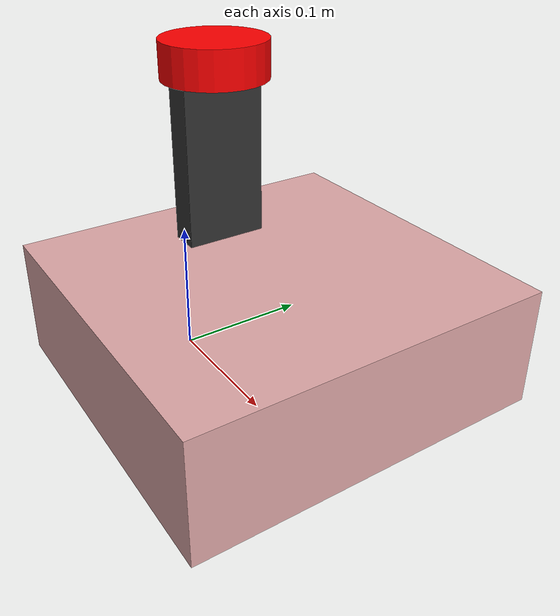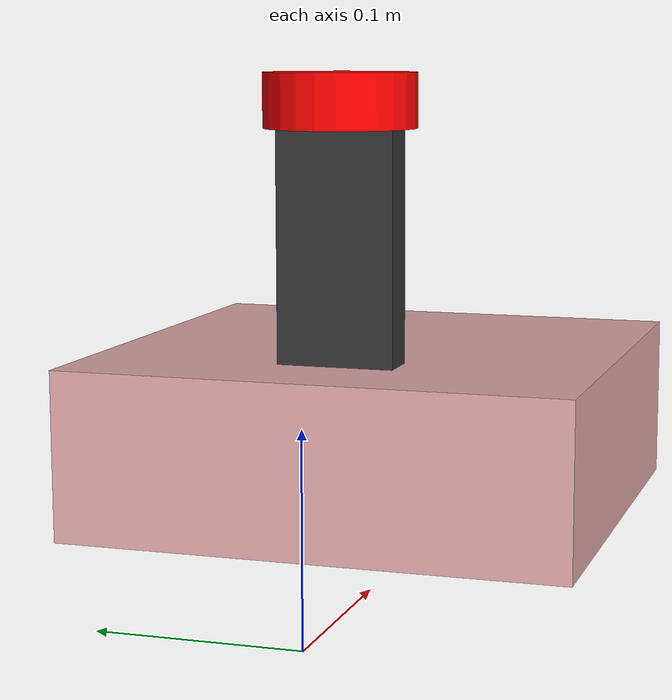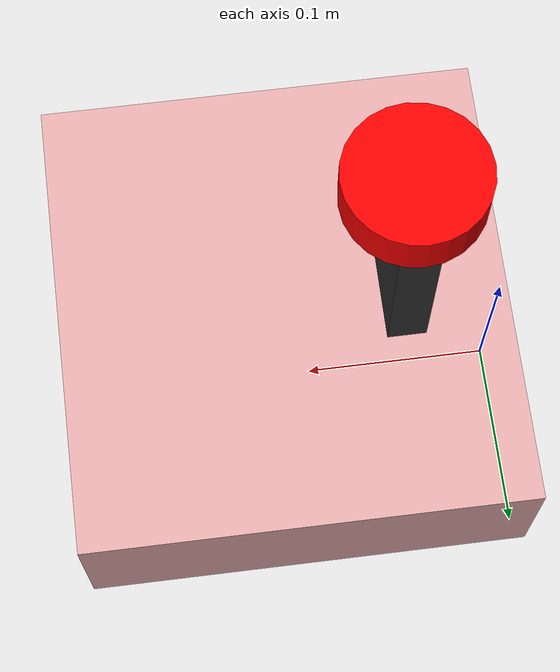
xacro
<?xml version="1.0"?>
<robot name="my_robot_2wd" xmlns:xacro="http://ros.org/wiki/xacro">

  <xacro:include filename="$(find my_2wd_robot)/urdf/2wd_properties.urdf.xacro" />
  <xacro:include filename="$(find my_2wd_robot)/urdf/robot_parts/base.urdf.xacro" />
  <xacro:include filename="$(find my_2wd_robot)/urdf/sensors/lidar.xacro" />

  <xacro:base
    length="${base_length}"
    width="${base_width}"
    height="${base_height}"
    mass="${base_mass}"
/>

  <xacro:lidar
    radius="0.035"
    length="0.025"
  />

</robot>

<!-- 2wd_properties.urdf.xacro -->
<robot xmlns:xacro="http://ros.org/wiki/xacro">
  <xacro:property name="base_length" value="0.23" />
  <xacro:property name="base_width" value="0.24" />
  <xacro:property name="base_height" value="0.08" />
  <xacro:property name="base_mass" value="1" />

</robot>

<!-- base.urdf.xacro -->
<robot xmlns:xacro="http://ros.org/wiki/xacro">
  <xacro:macro name="base" params="length width height mass ">

    <link name="base_link">
      <visual>
        <!-- Changed the origin to position the center of the visual box at the front of the robot -->
        <origin xyz="${length/2} 0 ${height/2}" rpy="0 0 3.14"/>
        <geometry>
          <box size="${length} ${width} ${height}"/>
        </geometry>
        <material name="yellow">
          <color rgba="0.8784 0.6627 0.6627 1.0"/>
        </material>
      </visual>

      <collision>
        <!-- Updated collision origin to match visual origin -->
        <origin xyz="${length/2} 0 0" rpy="0 0 0"/>
        <geometry>
          <box size="${length} ${width} ${height}"/>
        </geometry>
      </collision>

      <inertial>
        <!-- Updated inertial origin to match the new center of mass -->
        <origin xyz="${length/2} 0 0" rpy="0 0 0"/>
        <mass value="${mass}"/>
        <inertia ixx="${(1/12) * mass * ((width  * width)  + (height * height))}" ixy="0.0" ixz="0.0"
                 iyy="${(1/12) * mass * ((length * length) + (height * height))}" iyz="0.0"
                 izz="${(1/12) * mass * ((length * length) + (width  * width))}"/>
      </inertial>
    </link>

    <gazebo reference="base_link">
      <visual>
        <material>
          <ambient>0.8392 0.6314 0.0 1.0</ambient>
          <diffuse>0.8392 0.6314 0.0 1.0</diffuse>
          <specular>0.99 0.99 0.99 1.0</specular>
          <emissive>0.0 0.0 0.0 0.0</emissive>
        </material>
      </visual>
    </gazebo>

    <link name="base_footprint"/>

    <joint name="base_to_footprint" type="fixed">
      <parent link="base_footprint"/>
      <child link="base_link"/>
      <!-- Position the base_footprint directly below the front center of the robot -->
      <origin xyz="0 0 ${height/2}" rpy="0 0 0"/>
    </joint>

  </xacro:macro>
</robot>

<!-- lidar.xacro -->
<robot xmlns:xacro="http://www.ros.org/wiki/xacro" >

    <!-- Laser inertia  -->
    <xacro:macro name="lidar_inertial_cylinder" params="mass length radius *origin">
        <inertial>
            <xacro:insert_block name="origin"/>
            <mass value="${mass}" />
            <inertia ixx="${(1/12) * mass * (3*radius*radius + length*length)}" ixy="0.0" ixz="0.0"
                    iyy="${(1/12) * mass * (3*radius*radius + length*length)}" iyz="0.0"
                    izz="${(1/2) * mass * (radius*radius)}" />
        </inertial>
    </xacro:macro>

    <xacro:macro name="lidar" params="radius length">
    <!-- Lidar Stand -->
    <link name="lidar_stand">
        <visual>
            <geometry>
                <box size="0.02 0.055 0.16"/>
            </geometry>
            <material name="black">
                <color rgba="0.2 0.2 0.2 1.0"/>
            </material>
        </visual>
        <collision>
            <geometry>
                <box size="0.02 0.02 0.17"/>
            </geometry>
        </collision>
        <inertial>
            <mass value="0.1"/>
            <inertia ixx="0.000241" ixy="0" ixz="0"
                     iyy="0.000241" iyz="0"
                     izz="0.000006"/>
        </inertial>
    </link>

    <!-- Lidar Stand Joint -->
    <joint name="lidar_stand_joint" type="fixed">
        <parent link="base_link"/>
        <child link="lidar_stand"/>
        <origin xyz="0.055 0 0.12" rpy="0 0 0"/>
    </joint>

    <!-- Laser joint (now connects to stand) -->
    <joint name="laser_joint" type="fixed">
        <parent link="lidar_stand"/>
        <child link="laser"/>
        <origin xyz="0 0 0.08" rpy="0 0 0"/>
    </joint>

    <!-- Laser Link  -->
    <link name="laser">
        <visual>
            <geometry>
                <cylinder radius="${radius}" length="${length}"/>
            </geometry>
            <material name="red">
                <color rgba="1 0 0 1.0"/>
            </material>
        </visual>
        <collision>
            <geometry>
                <cylinder radius="${radius}" length="${length}"/>
            </geometry>
        </collision>
        <xacro:lidar_inertial_cylinder mass="0.1" length="${length}" radius="${radius}">
            <origin xyz="0 0 0" rpy="0 0 0"/>
        </xacro:lidar_inertial_cylinder>
    </link>

    <!-- Laser Frame Link -->
    <link name="laser_frame"/>

    <!-- Laser Frame Joint -->
    <joint name="laser_to_laser_frame" type="fixed">
        <parent link="laser"/>
        <child link="laser_frame"/>
        <origin xyz="0 0 0" rpy="0 0 0"/>
    </joint>

    <!-- Laser gazebo control  -->
    <gazebo reference="laser_frame">
        <material>Gazebo/Red</material>

        <sensor name="laser" type="ray">
            <pose> 0 0 0 0 0 0 </pose>
            <visualize>true</visualize>
            <update_rate>50</update_rate>
            <ray>
                <scan>
                    <horizontal>
                        <samples>720</samples>
                        <resolution>1</resolution>
                        <min_angle>-3.14</min_angle>
                        <max_angle>3.14</max_angle>
                    </horizontal>
                </scan>
                <range>
                    <min>0.3</min>
                    <max>12</max>
                    <resolution>0.01</resolution>
                </range>
            </ray>
            <plugin name="laser_controller" filename="libgazebo_ros_ray_sensor.so">
                <ros>
                    <remapping>laser_controller/out:=scan</remapping>
                </ros>
                <output_type>sensor_msgs/LaserScan</output_type>
                <frame_name>laser_frame</frame_name>
            </plugin>
        </sensor>
    </gazebo>
    </xacro:macro>

</robot>
